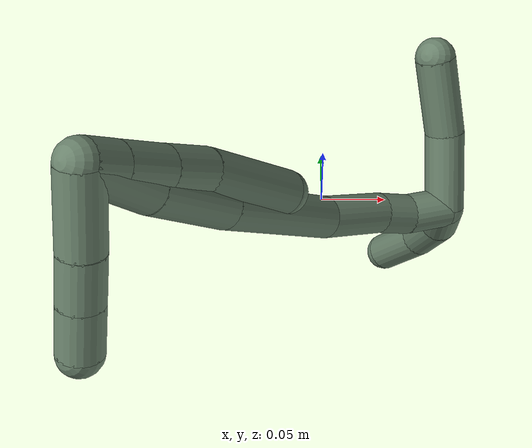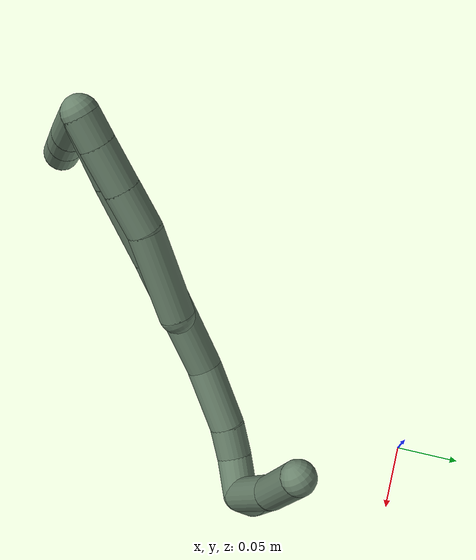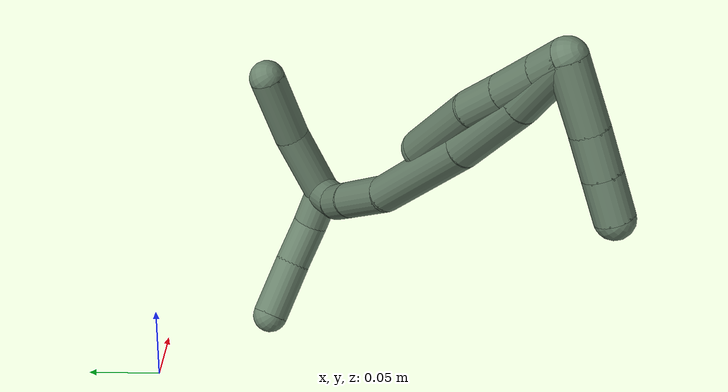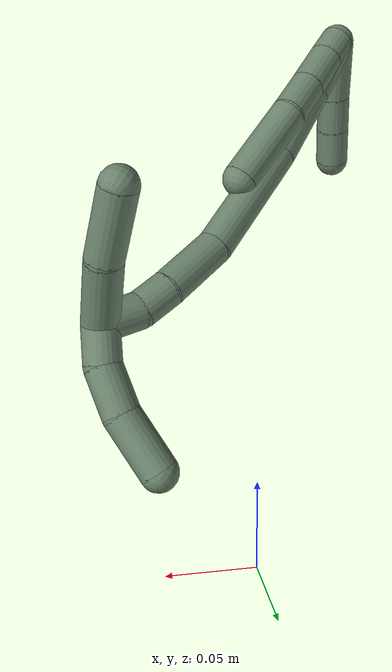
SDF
<sdf version="1.7">
 <world name="default">
  <model name="17">
   <static>0</static>
   <link name="17">
    <collision name="collision-cylinder-e_1_2_8">
     <pose>0.000559 -0.000252 -0.010587 3.11784 0.052734 2.29538</pose>
     <geometry><cylinder><radius>0.0125</radius><length>0.02121</length></cylinder></geometry>
     <surface>
      <friction><ode><mu>1.16</mu><mu2>1.16</mu2><slip1>0</slip1><slip2>0</slip2></ode></friction>
      <contact><ode><kp>1e+06</kp><kd>1</kd><max_vel>0</max_vel><min_depth>0.001</min_depth></ode></contact>
     </surface>
    </collision>
    <visual name="visual-cylinder-e_1_2_8">
     <pose>0.000559 -0.000252 -0.010587 3.11784 0.052734 2.29538</pose>
     <geometry><cylinder><radius>0.0125</radius><length>0.02121</length></cylinder></geometry>
     <material><ambient>0.415686 0.509804 0.423529 1</ambient></material>
    </visual>
    <collision name="collision-cylinder-e_2_8_9">
     <pose>0.00186 -0.000808 -0.03729 3.12268 0.045995 2.36141</pose>
     <geometry><cylinder><radius>0.0125</radius><length>0.032271</length></cylinder></geometry>
     <surface>
      <friction><ode><mu>1.16</mu><mu2>1.16</mu2><slip1>0</slip1><slip2>0</slip2></ode></friction>
      <contact><ode><kp>1e+06</kp><kd>1</kd><max_vel>0</max_vel><min_depth>0.001</min_depth></ode></contact>
     </surface>
    </collision>
    <visual name="visual-cylinder-e_2_8_9">
     <pose>0.00186 -0.000808 -0.03729 3.12268 0.045995 2.36141</pose>
     <geometry><cylinder><radius>0.0125</radius><length>0.032271</length></cylinder></geometry>
     <material><ambient>0.415686 0.509804 0.423529 1</ambient></material>
    </visual>
    <collision name="collision-cylinder-e_3_9_10">
     <pose>0.00351 -0.001171 -0.069179 3.13787 0.057497 3.01235</pose>
     <geometry><cylinder><radius>0.0125</radius><length>0.031598</length></cylinder></geometry>
     <surface>
      <friction><ode><mu>1.16</mu><mu2>1.16</mu2><slip1>0</slip1><slip2>0</slip2></ode></friction>
      <contact><ode><kp>1e+06</kp><kd>1</kd><max_vel>0</max_vel><min_depth>0.001</min_depth></ode></contact>
     </surface>
    </collision>
    <visual name="visual-cylinder-e_3_9_10">
     <pose>0.00351 -0.001171 -0.069179 3.13787 0.057497 3.01235</pose>
     <geometry><cylinder><radius>0.0125</radius><length>0.031598</length></cylinder></geometry>
     <material><ambient>0.415686 0.509804 0.423529 1</ambient></material>
    </visual>
    <collision name="collision-cylinder-e_4_10_6">
     <pose>0.008159 -0.006346 -0.116787 2.98227 0.115527 1.25381</pose>
     <geometry><cylinder><radius>0.0125</radius><length>0.06492</length></cylinder></geometry>
     <surface>
      <friction><ode><mu>1.16</mu><mu2>1.16</mu2><slip1>0</slip1><slip2>0</slip2></ode></friction>
      <contact><ode><kp>1e+06</kp><kd>1</kd><max_vel>0</max_vel><min_depth>0.001</min_depth></ode></contact>
     </surface>
    </collision>
    <visual name="visual-cylinder-e_4_10_6">
     <pose>0.008159 -0.006346 -0.116787 2.98227 0.115527 1.25381</pose>
     <geometry><cylinder><radius>0.0125</radius><length>0.06492</length></cylinder></geometry>
     <material><ambient>0.415686 0.509804 0.423529 1</ambient></material>
    </visual>
    <collision name="collision-cylinder-e_1_2_11">
     <pose>-0.006542 -0.019949 -0.007359 1.92421 -0.298466 -0.42493</pose>
     <geometry><cylinder><radius>0.0125</radius><length>0.044493</length></cylinder></geometry>
     <surface>
      <friction><ode><mu>1.16</mu><mu2>1.16</mu2><slip1>0</slip1><slip2>0</slip2></ode></friction>
      <contact><ode><kp>1e+06</kp><kd>1</kd><max_vel>0</max_vel><min_depth>0.001</min_depth></ode></contact>
     </surface>
    </collision>
    <visual name="visual-cylinder-e_1_2_11">
     <pose>-0.006542 -0.019949 -0.007359 1.92421 -0.298466 -0.42493</pose>
     <geometry><cylinder><radius>0.0125</radius><length>0.044493</length></cylinder></geometry>
     <material><ambient>0.415686 0.509804 0.423529 1</ambient></material>
    </visual>
    <collision name="collision-cylinder-e_2_11_12">
     <pose>-0.017628 -0.052138 -0.01925 1.92535 -0.335044 -0.476617</pose>
     <geometry><cylinder><radius>0.0125</radius><length>0.027642</length></cylinder></geometry>
     <surface>
      <friction><ode><mu>1.16</mu><mu2>1.16</mu2><slip1>0</slip1><slip2>0</slip2></ode></friction>
      <contact><ode><kp>1e+06</kp><kd>1</kd><max_vel>0</max_vel><min_depth>0.001</min_depth></ode></contact>
     </surface>
    </collision>
    <visual name="visual-cylinder-e_2_11_12">
     <pose>-0.017628 -0.052138 -0.01925 1.92535 -0.335044 -0.476617</pose>
     <geometry><cylinder><radius>0.0125</radius><length>0.027642</length></cylinder></geometry>
     <material><ambient>0.415686 0.509804 0.423529 1</ambient></material>
    </visual>
    <collision name="collision-cylinder-e_3_12_5">
     <pose>-0.026756 -0.076718 -0.028347 1.92518 -0.335236 -0.476802</pose>
     <geometry><cylinder><radius>0.0125</radius><length>0.027865</length></cylinder></geometry>
     <surface>
      <friction><ode><mu>1.16</mu><mu2>1.16</mu2><slip1>0</slip1><slip2>0</slip2></ode></friction>
      <contact><ode><kp>1e+06</kp><kd>1</kd><max_vel>0</max_vel><min_depth>0.001</min_depth></ode></contact>
     </surface>
    </collision>
    <visual name="visual-cylinder-e_3_12_5">
     <pose>-0.026756 -0.076718 -0.028347 1.92518 -0.335236 -0.476802</pose>
     <geometry><cylinder><radius>0.0125</radius><length>0.027865</length></cylinder></geometry>
     <material><ambient>0.415686 0.509804 0.423529 1</ambient></material>
    </visual>
    <collision name="collision-cylinder-e_1_2_13">
     <pose>-0.00064 -0.005639 -0.024231 2.91294 -0.025704 -0.222936</pose>
     <geometry><cylinder><radius>0.0125</radius><length>0.049774</length></cylinder></geometry>
     <surface>
      <friction><ode><mu>1.16</mu><mu2>1.16</mu2><slip1>0</slip1><slip2>0</slip2></ode></friction>
      <contact><ode><kp>1e+06</kp><kd>1</kd><max_vel>0</max_vel><min_depth>0.001</min_depth></ode></contact>
     </surface>
    </collision>
    <visual name="visual-cylinder-e_1_2_13">
     <pose>-0.00064 -0.005639 -0.024231 2.91294 -0.025704 -0.222936</pose>
     <geometry><cylinder><radius>0.0125</radius><length>0.049774</length></cylinder></geometry>
     <material><ambient>0.415686 0.509804 0.423529 1</ambient></material>
    </visual>
    <collision name="collision-cylinder-e_2_13_14">
     <pose>-0.001069 -0.015297 -0.078553 3.00882 0.006917 0.10394</pose>
     <geometry><cylinder><radius>0.0125</radius><length>0.060717</length></cylinder></geometry>
     <surface>
      <friction><ode><mu>1.16</mu><mu2>1.16</mu2><slip1>0</slip1><slip2>0</slip2></ode></friction>
      <contact><ode><kp>1e+06</kp><kd>1</kd><max_vel>0</max_vel><min_depth>0.001</min_depth></ode></contact>
     </surface>
    </collision>
    <visual name="visual-cylinder-e_2_13_14">
     <pose>-0.001069 -0.015297 -0.078553 3.00882 0.006917 0.10394</pose>
     <geometry><cylinder><radius>0.0125</radius><length>0.060717</length></cylinder></geometry>
     <material><ambient>0.415686 0.509804 0.423529 1</ambient></material>
    </visual>
    <collision name="collision-cylinder-e_3_14_15">
     <pose>0.002679 -0.022515 -0.153643 3.07063 0.078265 1.66864</pose>
     <geometry><cylinder><radius>0.0125</radius><length>0.090504</length></cylinder></geometry>
     <surface>
      <friction><ode><mu>1.16</mu><mu2>1.16</mu2><slip1>0</slip1><slip2>0</slip2></ode></friction>
      <contact><ode><kp>1e+06</kp><kd>1</kd><max_vel>0</max_vel><min_depth>0.001</min_depth></ode></contact>
     </surface>
    </collision>
    <visual name="visual-cylinder-e_3_14_15">
     <pose>0.002679 -0.022515 -0.153643 3.07063 0.078265 1.66864</pose>
     <geometry><cylinder><radius>0.0125</radius><length>0.090504</length></cylinder></geometry>
     <material><ambient>0.415686 0.509804 0.423529 1</ambient></material>
    </visual>
    <collision name="collision-cylinder-e_4_15_16">
     <pose>0.012274 -0.024588 -0.221269 -3.0919 0.26127 -2.76773</pose>
     <geometry><cylinder><radius>0.0125</radius><length>0.046898</length></cylinder></geometry>
     <surface>
      <friction><ode><mu>1.16</mu><mu2>1.16</mu2><slip1>0</slip1><slip2>0</slip2></ode></friction>
      <contact><ode><kp>1e+06</kp><kd>1</kd><max_vel>0</max_vel><min_depth>0.001</min_depth></ode></contact>
     </surface>
    </collision>
    <visual name="visual-cylinder-e_4_15_16">
     <pose>0.012274 -0.024588 -0.221269 -3.0919 0.26127 -2.76773</pose>
     <geometry><cylinder><radius>0.0125</radius><length>0.046898</length></cylinder></geometry>
     <material><ambient>0.415686 0.509804 0.423529 1</ambient></material>
    </visual>
    <collision name="collision-cylinder-e_5_16_17">
     <pose>0.022622 -0.023936 -0.255216 3.09983 0.36196 2.91428</pose>
     <geometry><cylinder><radius>0.0125</radius><length>0.024235</length></cylinder></geometry>
     <surface>
      <friction><ode><mu>1.16</mu><mu2>1.16</mu2><slip1>0</slip1><slip2>0</slip2></ode></friction>
      <contact><ode><kp>1e+06</kp><kd>1</kd><max_vel>0</max_vel><min_depth>0.001</min_depth></ode></contact>
     </surface>
    </collision>
    <visual name="visual-cylinder-e_5_16_17">
     <pose>0.022622 -0.023936 -0.255216 3.09983 0.36196 2.91428</pose>
     <geometry><cylinder><radius>0.0125</radius><length>0.024235</length></cylinder></geometry>
     <material><ambient>0.415686 0.509804 0.423529 1</ambient></material>
    </visual>
    <collision name="collision-cylinder-e_6_17_1">
     <pose>0.03492 -0.022309 -0.277749 -2.95636 0.612109 -2.5698</pose>
     <geometry><cylinder><radius>0.0125</radius><length>0.027872</length></cylinder></geometry>
     <surface>
      <friction><ode><mu>1.16</mu><mu2>1.16</mu2><slip1>0</slip1><slip2>0</slip2></ode></friction>
      <contact><ode><kp>1e+06</kp><kd>1</kd><max_vel>0</max_vel><min_depth>0.001</min_depth></ode></contact>
     </surface>
    </collision>
    <visual name="visual-cylinder-e_6_17_1">
     <pose>0.03492 -0.022309 -0.277749 -2.95636 0.612109 -2.5698</pose>
     <geometry><cylinder><radius>0.0125</radius><length>0.027872</length></cylinder></geometry>
     <material><ambient>0.415686 0.509804 0.423529 1</ambient></material>
    </visual>
    <collision name="collision-cylinder-e_1_1_18">
     <pose>0.046749 0.00352 -0.28129 -1.25816 0.152062 -0.110757</pose>
     <geometry><cylinder><radius>0.0125</radius><length>0.050455</length></cylinder></geometry>
     <surface>
      <friction><ode><mu>1.16</mu><mu2>1.16</mu2><slip1>0</slip1><slip2>0</slip2></ode></friction>
      <contact><ode><kp>1e+06</kp><kd>1</kd><max_vel>0</max_vel><min_depth>0.001</min_depth></ode></contact>
     </surface>
    </collision>
    <visual name="visual-cylinder-e_1_1_18">
     <pose>0.046749 0.00352 -0.28129 -1.25816 0.152062 -0.110757</pose>
     <geometry><cylinder><radius>0.0125</radius><length>0.050455</length></cylinder></geometry>
     <material><ambient>0.415686 0.509804 0.423529 1</ambient></material>
    </visual>
    <collision name="collision-cylinder-e_2_18_4">
     <pose>0.05294 0.049066 -0.262131 -1.08609 0.095808 -0.057855</pose>
     <geometry><cylinder><radius>0.0125</radius><length>0.049545</length></cylinder></geometry>
     <surface>
      <friction><ode><mu>1.16</mu><mu2>1.16</mu2><slip1>0</slip1><slip2>0</slip2></ode></friction>
      <contact><ode><kp>1e+06</kp><kd>1</kd><max_vel>0</max_vel><min_depth>0.001</min_depth></ode></contact>
     </surface>
    </collision>
    <visual name="visual-cylinder-e_2_18_4">
     <pose>0.05294 0.049066 -0.262131 -1.08609 0.095808 -0.057855</pose>
     <geometry><cylinder><radius>0.0125</radius><length>0.049545</length></cylinder></geometry>
     <material><ambient>0.415686 0.509804 0.423529 1</ambient></material>
    </visual>
    <collision name="collision-cylinder-e_1_1_19">
     <pose>0.036326 -0.025507 -0.299001 2.65599 -0.526707 -1.65553</pose>
     <geometry><cylinder><radius>0.0125</radius><length>0.026266</length></cylinder></geometry>
     <surface>
      <friction><ode><mu>1.16</mu><mu2>1.16</mu2><slip1>0</slip1><slip2>0</slip2></ode></friction>
      <contact><ode><kp>1e+06</kp><kd>1</kd><max_vel>0</max_vel><min_depth>0.001</min_depth></ode></contact>
     </surface>
    </collision>
    <visual name="visual-cylinder-e_1_1_19">
     <pose>0.036326 -0.025507 -0.299001 2.65599 -0.526707 -1.65553</pose>
     <geometry><cylinder><radius>0.0125</radius><length>0.026266</length></cylinder></geometry>
     <material><ambient>0.415686 0.509804 0.423529 1</ambient></material>
    </visual>
    <collision name="collision-cylinder-e_2_19_20">
     <pose>0.017763 -0.03579 -0.31863 2.66227 -0.836106 -2.13582</pose>
     <geometry><cylinder><radius>0.0125</radius><length>0.03224</length></cylinder></geometry>
     <surface>
      <friction><ode><mu>1.16</mu><mu2>1.16</mu2><slip1>0</slip1><slip2>0</slip2></ode></friction>
      <contact><ode><kp>1e+06</kp><kd>1</kd><max_vel>0</max_vel><min_depth>0.001</min_depth></ode></contact>
     </surface>
    </collision>
    <visual name="visual-cylinder-e_2_19_20">
     <pose>0.017763 -0.03579 -0.31863 2.66227 -0.836106 -2.13582</pose>
     <geometry><cylinder><radius>0.0125</radius><length>0.03224</length></cylinder></geometry>
     <material><ambient>0.415686 0.509804 0.423529 1</ambient></material>
    </visual>
    <collision name="collision-cylinder-e_3_20_3">
     <pose>-0.012132 -0.046382 -0.337015 2.57399 -1.04392 -2.20295</pose>
     <geometry><cylinder><radius>0.0125</radius><length>0.041494</length></cylinder></geometry>
     <surface>
      <friction><ode><mu>1.16</mu><mu2>1.16</mu2><slip1>0</slip1><slip2>0</slip2></ode></friction>
      <contact><ode><kp>1e+06</kp><kd>1</kd><max_vel>0</max_vel><min_depth>0.001</min_depth></ode></contact>
     </surface>
    </collision>
    <visual name="visual-cylinder-e_3_20_3">
     <pose>-0.012132 -0.046382 -0.337015 2.57399 -1.04392 -2.20295</pose>
     <geometry><cylinder><radius>0.0125</radius><length>0.041494</length></cylinder></geometry>
     <material><ambient>0.415686 0.509804 0.423529 1</ambient></material>
    </visual>
    <collision name="collision-sphere-3">
     <pose>-0.030066 -0.05199 -0.345811 0 -0 0</pose>
     <geometry><sphere><radius>0.0125</radius></sphere></geometry>
     <surface>
      <friction><ode><mu>1.16</mu><mu2>1.16</mu2><slip1>0</slip1><slip2>0</slip2></ode></friction>
      <contact><ode><kp>1e+06</kp><kd>1</kd><max_vel>0</max_vel><min_depth>0.001</min_depth></ode></contact>
     </surface>
    </collision>
    <visual name="visual-sphere-3">
     <pose>-0.030066 -0.05199 -0.345811 0 -0 0</pose>
     <geometry><sphere><radius>0.0125</radius></sphere></geometry>
     <material><ambient>0.415686 0.509804 0.423529 1</ambient></material>
    </visual>
    <collision name="collision-sphere-20">
     <pose>0.005801 -0.040773 -0.328218 0 -0 0</pose>
     <geometry><sphere><radius>0.0125</radius></sphere></geometry>
     <surface>
      <friction><ode><mu>1.16</mu><mu2>1.16</mu2><slip1>0</slip1><slip2>0</slip2></ode></friction>
      <contact><ode><kp>1e+06</kp><kd>1</kd><max_vel>0</max_vel><min_depth>0.001</min_depth></ode></contact>
     </surface>
    </collision>
    <visual name="visual-sphere-20">
     <pose>0.005801 -0.040773 -0.328218 0 -0 0</pose>
     <geometry><sphere><radius>0.0125</radius></sphere></geometry>
     <material><ambient>0.415686 0.509804 0.423529 1</ambient></material>
    </visual>
    <collision name="collision-sphere-19">
     <pose>0.029724 -0.030806 -0.309042 0 -0 0</pose>
     <geometry><sphere><radius>0.0125</radius></sphere></geometry>
     <surface>
      <friction><ode><mu>1.16</mu><mu2>1.16</mu2><slip1>0</slip1><slip2>0</slip2></ode></friction>
      <contact><ode><kp>1e+06</kp><kd>1</kd><max_vel>0</max_vel><min_depth>0.001</min_depth></ode></contact>
     </surface>
    </collision>
    <visual name="visual-sphere-19">
     <pose>0.029724 -0.030806 -0.309042 0 -0 0</pose>
     <geometry><sphere><radius>0.0125</radius></sphere></geometry>
     <material><ambient>0.415686 0.509804 0.423529 1</ambient></material>
    </visual>
    <collision name="collision-sphere-11">
     <pose>-0.013083 -0.039897 -0.014718 0 -0 0</pose>
     <geometry><sphere><radius>0.0125</radius></sphere></geometry>
     <surface>
      <friction><ode><mu>1.16</mu><mu2>1.16</mu2><slip1>0</slip1><slip2>0</slip2></ode></friction>
      <contact><ode><kp>1e+06</kp><kd>1</kd><max_vel>0</max_vel><min_depth>0.001</min_depth></ode></contact>
     </surface>
    </collision>
    <visual name="visual-sphere-11">
     <pose>-0.013083 -0.039897 -0.014718 0 -0 0</pose>
     <geometry><sphere><radius>0.0125</radius></sphere></geometry>
     <material><ambient>0.415686 0.509804 0.423529 1</ambient></material>
    </visual>
    <collision name="collision-sphere-6">
     <pose>0.011901 -0.011461 -0.148623 0 -0 0</pose>
     <geometry><sphere><radius>0.0125</radius></sphere></geometry>
     <surface>
      <friction><ode><mu>1.16</mu><mu2>1.16</mu2><slip1>0</slip1><slip2>0</slip2></ode></friction>
      <contact><ode><kp>1e+06</kp><kd>1</kd><max_vel>0</max_vel><min_depth>0.001</min_depth></ode></contact>
     </surface>
    </collision>
    <visual name="visual-sphere-6">
     <pose>0.011901 -0.011461 -0.148623 0 -0 0</pose>
     <geometry><sphere><radius>0.0125</radius></sphere></geometry>
     <material><ambient>0.415686 0.509804 0.423529 1</ambient></material>
    </visual>
    <collision name="collision-sphere-10">
     <pose>0.004418 -0.00123 -0.084952 0 -0 0</pose>
     <geometry><sphere><radius>0.0125</radius></sphere></geometry>
     <surface>
      <friction><ode><mu>1.16</mu><mu2>1.16</mu2><slip1>0</slip1><slip2>0</slip2></ode></friction>
      <contact><ode><kp>1e+06</kp><kd>1</kd><max_vel>0</max_vel><min_depth>0.001</min_depth></ode></contact>
     </surface>
    </collision>
    <visual name="visual-sphere-10">
     <pose>0.004418 -0.00123 -0.084952 0 -0 0</pose>
     <geometry><sphere><radius>0.0125</radius></sphere></geometry>
     <material><ambient>0.415686 0.509804 0.423529 1</ambient></material>
    </visual>
    <collision name="collision-sphere-9">
     <pose>0.002602 -0.001113 -0.053406 0 -0 0</pose>
     <geometry><sphere><radius>0.0125</radius></sphere></geometry>
     <surface>
      <friction><ode><mu>1.16</mu><mu2>1.16</mu2><slip1>0</slip1><slip2>0</slip2></ode></friction>
      <contact><ode><kp>1e+06</kp><kd>1</kd><max_vel>0</max_vel><min_depth>0.001</min_depth></ode></contact>
     </surface>
    </collision>
    <visual name="visual-sphere-9">
     <pose>0.002602 -0.001113 -0.053406 0 -0 0</pose>
     <geometry><sphere><radius>0.0125</radius></sphere></geometry>
     <material><ambient>0.415686 0.509804 0.423529 1</ambient></material>
    </visual>
    <collision name="collision-sphere-2">
     <geometry><sphere><radius>0.0125</radius></sphere></geometry>
     <surface>
      <friction><ode><mu>1.16</mu><mu2>1.16</mu2><slip1>0</slip1><slip2>0</slip2></ode></friction>
      <contact><ode><kp>1e+06</kp><kd>1</kd><max_vel>0</max_vel><min_depth>0.001</min_depth></ode></contact>
     </surface>
    </collision>
    <visual name="visual-sphere-2">
     <geometry><sphere><radius>0.0125</radius></sphere></geometry>
     <material><ambient>0.415686 0.509804 0.423529 1</ambient></material>
    </visual>
    <collision name="collision-sphere-8">
     <pose>0.001118 -0.000503 -0.021175 0 -0 0</pose>
     <geometry><sphere><radius>0.0125</radius></sphere></geometry>
     <surface>
      <friction><ode><mu>1.16</mu><mu2>1.16</mu2><slip1>0</slip1><slip2>0</slip2></ode></friction>
      <contact><ode><kp>1e+06</kp><kd>1</kd><max_vel>0</max_vel><min_depth>0.001</min_depth></ode></contact>
     </surface>
    </collision>
    <visual name="visual-sphere-8">
     <pose>0.001118 -0.000503 -0.021175 0 -0 0</pose>
     <geometry><sphere><radius>0.0125</radius></sphere></geometry>
     <material><ambient>0.415686 0.509804 0.423529 1</ambient></material>
    </visual>
    <collision name="collision-sphere-12">
     <pose>-0.022172 -0.064379 -0.023781 0 -0 0</pose>
     <geometry><sphere><radius>0.0125</radius></sphere></geometry>
     <surface>
      <friction><ode><mu>1.16</mu><mu2>1.16</mu2><slip1>0</slip1><slip2>0</slip2></ode></friction>
      <contact><ode><kp>1e+06</kp><kd>1</kd><max_vel>0</max_vel><min_depth>0.001</min_depth></ode></contact>
     </surface>
    </collision>
    <visual name="visual-sphere-12">
     <pose>-0.022172 -0.064379 -0.023781 0 -0 0</pose>
     <geometry><sphere><radius>0.0125</radius></sphere></geometry>
     <material><ambient>0.415686 0.509804 0.423529 1</ambient></material>
    </visual>
    <collision name="collision-sphere-5">
     <pose>-0.03134 -0.089058 -0.032912 0 -0 0</pose>
     <geometry><sphere><radius>0.0125</radius></sphere></geometry>
     <surface>
      <friction><ode><mu>1.16</mu><mu2>1.16</mu2><slip1>0</slip1><slip2>0</slip2></ode></friction>
      <contact><ode><kp>1e+06</kp><kd>1</kd><max_vel>0</max_vel><min_depth>0.001</min_depth></ode></contact>
     </surface>
    </collision>
    <visual name="visual-sphere-5">
     <pose>-0.03134 -0.089058 -0.032912 0 -0 0</pose>
     <geometry><sphere><radius>0.0125</radius></sphere></geometry>
     <material><ambient>0.415686 0.509804 0.423529 1</ambient></material>
    </visual>
    <collision name="collision-sphere-13">
     <pose>-0.001279 -0.011278 -0.048463 0 -0 0</pose>
     <geometry><sphere><radius>0.0125</radius></sphere></geometry>
     <surface>
      <friction><ode><mu>1.16</mu><mu2>1.16</mu2><slip1>0</slip1><slip2>0</slip2></ode></friction>
      <contact><ode><kp>1e+06</kp><kd>1</kd><max_vel>0</max_vel><min_depth>0.001</min_depth></ode></contact>
     </surface>
    </collision>
    <visual name="visual-sphere-13">
     <pose>-0.001279 -0.011278 -0.048463 0 -0 0</pose>
     <geometry><sphere><radius>0.0125</radius></sphere></geometry>
     <material><ambient>0.415686 0.509804 0.423529 1</ambient></material>
    </visual>
    <collision name="collision-sphere-14">
     <pose>-0.000859 -0.019316 -0.108644 0 -0 0</pose>
     <geometry><sphere><radius>0.0125</radius></sphere></geometry>
     <surface>
      <friction><ode><mu>1.16</mu><mu2>1.16</mu2><slip1>0</slip1><slip2>0</slip2></ode></friction>
      <contact><ode><kp>1e+06</kp><kd>1</kd><max_vel>0</max_vel><min_depth>0.001</min_depth></ode></contact>
     </surface>
    </collision>
    <visual name="visual-sphere-14">
     <pose>-0.000859 -0.019316 -0.108644 0 -0 0</pose>
     <geometry><sphere><radius>0.0125</radius></sphere></geometry>
     <material><ambient>0.415686 0.509804 0.423529 1</ambient></material>
    </visual>
    <collision name="collision-sphere-15">
     <pose>0.006217 -0.025713 -0.198643 0 -0 0</pose>
     <geometry><sphere><radius>0.0125</radius></sphere></geometry>
     <surface>
      <friction><ode><mu>1.16</mu><mu2>1.16</mu2><slip1>0</slip1><slip2>0</slip2></ode></friction>
      <contact><ode><kp>1e+06</kp><kd>1</kd><max_vel>0</max_vel><min_depth>0.001</min_depth></ode></contact>
     </surface>
    </collision>
    <visual name="visual-sphere-15">
     <pose>0.006217 -0.025713 -0.198643 0 -0 0</pose>
     <geometry><sphere><radius>0.0125</radius></sphere></geometry>
     <material><ambient>0.415686 0.509804 0.423529 1</ambient></material>
    </visual>
    <collision name="collision-sphere-16">
     <pose>0.018331 -0.023463 -0.243894 0 -0 0</pose>
     <geometry><sphere><radius>0.0125</radius></sphere></geometry>
     <surface>
      <friction><ode><mu>1.16</mu><mu2>1.16</mu2><slip1>0</slip1><slip2>0</slip2></ode></friction>
      <contact><ode><kp>1e+06</kp><kd>1</kd><max_vel>0</max_vel><min_depth>0.001</min_depth></ode></contact>
     </surface>
    </collision>
    <visual name="visual-sphere-16">
     <pose>0.018331 -0.023463 -0.243894 0 -0 0</pose>
     <geometry><sphere><radius>0.0125</radius></sphere></geometry>
     <material><ambient>0.415686 0.509804 0.423529 1</ambient></material>
    </visual>
    <collision name="collision-sphere-17">
     <pose>0.026913 -0.024409 -0.266539 0 -0 0</pose>
     <geometry><sphere><radius>0.0125</radius></sphere></geometry>
     <surface>
      <friction><ode><mu>1.16</mu><mu2>1.16</mu2><slip1>0</slip1><slip2>0</slip2></ode></friction>
      <contact><ode><kp>1e+06</kp><kd>1</kd><max_vel>0</max_vel><min_depth>0.001</min_depth></ode></contact>
     </surface>
    </collision>
    <visual name="visual-sphere-17">
     <pose>0.026913 -0.024409 -0.266539 0 -0 0</pose>
     <geometry><sphere><radius>0.0125</radius></sphere></geometry>
     <material><ambient>0.415686 0.509804 0.423529 1</ambient></material>
    </visual>
    <collision name="collision-sphere-1">
     <pose>0.042928 -0.020208 -0.28896 0 -0 0</pose>
     <geometry><sphere><radius>0.0125</radius></sphere></geometry>
     <surface>
      <friction><ode><mu>1.16</mu><mu2>1.16</mu2><slip1>0</slip1><slip2>0</slip2></ode></friction>
      <contact><ode><kp>1e+06</kp><kd>1</kd><max_vel>0</max_vel><min_depth>0.001</min_depth></ode></contact>
     </surface>
    </collision>
    <visual name="visual-sphere-1">
     <pose>0.042928 -0.020208 -0.28896 0 -0 0</pose>
     <geometry><sphere><radius>0.0125</radius></sphere></geometry>
     <material><ambient>0.415686 0.509804 0.423529 1</ambient></material>
    </visual>
    <collision name="collision-sphere-18">
     <pose>0.050571 0.027247 -0.273621 0 -0 0</pose>
     <geometry><sphere><radius>0.0125</radius></sphere></geometry>
     <surface>
      <friction><ode><mu>1.16</mu><mu2>1.16</mu2><slip1>0</slip1><slip2>0</slip2></ode></friction>
      <contact><ode><kp>1e+06</kp><kd>1</kd><max_vel>0</max_vel><min_depth>0.001</min_depth></ode></contact>
     </surface>
    </collision>
    <visual name="visual-sphere-18">
     <pose>0.050571 0.027247 -0.273621 0 -0 0</pose>
     <geometry><sphere><radius>0.0125</radius></sphere></geometry>
     <material><ambient>0.415686 0.509804 0.423529 1</ambient></material>
    </visual>
    <collision name="collision-sphere-4">
     <pose>0.05531 0.070884 -0.250641 0 -0 0</pose>
     <geometry><sphere><radius>0.0125</radius></sphere></geometry>
     <surface>
      <friction><ode><mu>1.16</mu><mu2>1.16</mu2><slip1>0</slip1><slip2>0</slip2></ode></friction>
      <contact><ode><kp>1e+06</kp><kd>1</kd><max_vel>0</max_vel><min_depth>0.001</min_depth></ode></contact>
     </surface>
    </collision>
    <visual name="visual-sphere-4">
     <pose>0.05531 0.070884 -0.250641 0 -0 0</pose>
     <geometry><sphere><radius>0.0125</radius></sphere></geometry>
     <material><ambient>0.415686 0.509804 0.423529 1</ambient></material>
    </visual>
    <inertial>
     <pose>0.009915 -0.015585 -0.155093 0 -0 0</pose>
     <mass>0.75</mass>
     <inertia>
      <ixx>0.000116</ixx>
      <ixy>0</ixy>
      <ixz>0</ixz>
      <iyy>7.4e-05</iyy>
      <iyz>0</iyz>
      <izz>-3.1e-05</izz>
     </inertia>
    </inertial>
   </link>
   <pose>-0.11533 -0.255319 0.280377 0.857479 -0.400891 -0.405979</pose>
  </model>
 </world>
</sdf>
